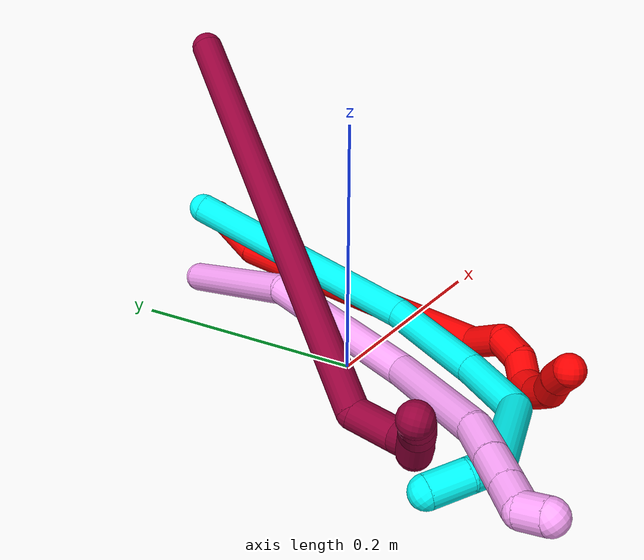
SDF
<sdf version="1.7">
 <world name="default">
  <model name="2">
   <static>0</static>
   <link name="2">
    <collision name="collision-cylinder-e_1_1_4">
     <pose>-0.009682 -0.026032 0.015119 1.04464 -0.31117 -0.180095</pose>
     <geometry><cylinder><radius>0.0125</radius><length>0.063245</length></cylinder></geometry>
     <surface>
      <friction><ode><mu>1.16</mu><mu2>1.16</mu2><slip1>0</slip1><slip2>0</slip2></ode></friction>
      <contact><ode><kp>1e+06</kp><kd>1</kd><max_vel>0</max_vel><min_depth>0.001</min_depth></ode></contact>
     </surface>
    </collision>
    <visual name="visual-cylinder-e_1_1_4">
     <pose>-0.009682 -0.026032 0.015119 1.04464 -0.31117 -0.180095</pose>
     <geometry><cylinder><radius>0.0125</radius><length>0.063245</length></cylinder></geometry>
     <material><ambient>1 0 0 1</ambient></material>
    </visual>
    <collision name="collision-cylinder-e_2_4_5">
     <pose>-0.072232 -0.176604 0.049767 1.41525 -0.397099 -0.340876</pose>
     <geometry><cylinder><radius>0.0125</radius><length>0.273398</length></cylinder></geometry>
     <surface>
      <friction><ode><mu>1.16</mu><mu2>1.16</mu2><slip1>0</slip1><slip2>0</slip2></ode></friction>
      <contact><ode><kp>1e+06</kp><kd>1</kd><max_vel>0</max_vel><min_depth>0.001</min_depth></ode></contact>
     </surface>
    </collision>
    <visual name="visual-cylinder-e_2_4_5">
     <pose>-0.072232 -0.176604 0.049767 1.41525 -0.397099 -0.340876</pose>
     <geometry><cylinder><radius>0.0125</radius><length>0.273398</length></cylinder></geometry>
     <material><ambient>1 0 0 1</ambient></material>
    </visual>
    <collision name="collision-cylinder-e_3_5_6">
     <pose>-0.128789 -0.317237 0.064798 1.84341 -0.217334 -0.285604</pose>
     <geometry><cylinder><radius>0.0125</radius><length>0.034224</length></cylinder></geometry>
     <surface>
      <friction><ode><mu>1.16</mu><mu2>1.16</mu2><slip1>0</slip1><slip2>0</slip2></ode></friction>
      <contact><ode><kp>1e+06</kp><kd>1</kd><max_vel>0</max_vel><min_depth>0.001</min_depth></ode></contact>
     </surface>
    </collision>
    <visual name="visual-cylinder-e_3_5_6">
     <pose>-0.128789 -0.317237 0.064798 1.84341 -0.217334 -0.285604</pose>
     <geometry><cylinder><radius>0.0125</radius><length>0.034224</length></cylinder></geometry>
     <material><ambient>1 0 0 1</ambient></material>
    </visual>
    <collision name="collision-cylinder-e_4_6_7">
     <pose>-0.13399 -0.345001 0.065344 1.1628 -0.118272 -0.077777</pose>
     <geometry><cylinder><radius>0.0125</radius><length>0.025611</length></cylinder></geometry>
     <surface>
      <friction><ode><mu>1.16</mu><mu2>1.16</mu2><slip1>0</slip1><slip2>0</slip2></ode></friction>
      <contact><ode><kp>1e+06</kp><kd>1</kd><max_vel>0</max_vel><min_depth>0.001</min_depth></ode></contact>
     </surface>
    </collision>
    <visual name="visual-cylinder-e_4_6_7">
     <pose>-0.13399 -0.345001 0.065344 1.1628 -0.118272 -0.077777</pose>
     <geometry><cylinder><radius>0.0125</radius><length>0.025611</length></cylinder></geometry>
     <material><ambient>1 0 0 1</ambient></material>
    </visual>
    <collision name="collision-cylinder-e_5_7_8">
     <pose>-0.13335 -0.364655 0.077585 0.837071 0.197494 0.088078</pose>
     <geometry><cylinder><radius>0.0125</radius><length>0.021919</length></cylinder></geometry>
     <surface>
      <friction><ode><mu>1.16</mu><mu2>1.16</mu2><slip1>0</slip1><slip2>0</slip2></ode></friction>
      <contact><ode><kp>1e+06</kp><kd>1</kd><max_vel>0</max_vel><min_depth>0.001</min_depth></ode></contact>
     </surface>
    </collision>
    <visual name="visual-cylinder-e_5_7_8">
     <pose>-0.13335 -0.364655 0.077585 0.837071 0.197494 0.088078</pose>
     <geometry><cylinder><radius>0.0125</radius><length>0.021919</length></cylinder></geometry>
     <material><ambient>1 0 0 1</ambient></material>
    </visual>
    <collision name="collision-cylinder-e_6_8_9">
     <pose>-0.129833 -0.383014 0.085622 1.49004 0.13052 0.120408</pose>
     <geometry><cylinder><radius>0.0125</radius><length>0.021003</length></cylinder></geometry>
     <surface>
      <friction><ode><mu>1.16</mu><mu2>1.16</mu2><slip1>0</slip1><slip2>0</slip2></ode></friction>
      <contact><ode><kp>1e+06</kp><kd>1</kd><max_vel>0</max_vel><min_depth>0.001</min_depth></ode></contact>
     </surface>
    </collision>
    <visual name="visual-cylinder-e_6_8_9">
     <pose>-0.129833 -0.383014 0.085622 1.49004 0.13052 0.120408</pose>
     <geometry><cylinder><radius>0.0125</radius><length>0.021003</length></cylinder></geometry>
     <material><ambient>1 0 0 1</ambient></material>
    </visual>
    <collision name="collision-cylinder-e_7_9_10">
     <pose>-0.12831 -0.402879 0.08323 1.89908 0.015609 0.021805</pose>
     <geometry><cylinder><radius>0.0125</radius><length>0.020046</length></cylinder></geometry>
     <surface>
      <friction><ode><mu>1.16</mu><mu2>1.16</mu2><slip1>0</slip1><slip2>0</slip2></ode></friction>
      <contact><ode><kp>1e+06</kp><kd>1</kd><max_vel>0</max_vel><min_depth>0.001</min_depth></ode></contact>
     </surface>
    </collision>
    <visual name="visual-cylinder-e_7_9_10">
     <pose>-0.12831 -0.402879 0.08323 1.89908 0.015609 0.021805</pose>
     <geometry><cylinder><radius>0.0125</radius><length>0.020046</length></cylinder></geometry>
     <material><ambient>1 0 0 1</ambient></material>
    </visual>
    <collision name="collision-cylinder-e_8_10_11">
     <pose>-0.126065 -0.41989 0.073404 2.29051 0.205826 0.448087</pose>
     <geometry><cylinder><radius>0.0125</radius><length>0.020442</length></cylinder></geometry>
     <surface>
      <friction><ode><mu>1.16</mu><mu2>1.16</mu2><slip1>0</slip1><slip2>0</slip2></ode></friction>
      <contact><ode><kp>1e+06</kp><kd>1</kd><max_vel>0</max_vel><min_depth>0.001</min_depth></ode></contact>
     </surface>
    </collision>
    <visual name="visual-cylinder-e_8_10_11">
     <pose>-0.126065 -0.41989 0.073404 2.29051 0.205826 0.448087</pose>
     <geometry><cylinder><radius>0.0125</radius><length>0.020442</length></cylinder></geometry>
     <material><ambient>1 0 0 1</ambient></material>
    </visual>
    <collision name="collision-cylinder-e_9_11_2">
     <pose>-0.123257 -0.435971 0.061576 2.11962 0.071497 0.127405</pose>
     <geometry><cylinder><radius>0.0125</radius><length>0.020112</length></cylinder></geometry>
     <surface>
      <friction><ode><mu>1.16</mu><mu2>1.16</mu2><slip1>0</slip1><slip2>0</slip2></ode></friction>
      <contact><ode><kp>1e+06</kp><kd>1</kd><max_vel>0</max_vel><min_depth>0.001</min_depth></ode></contact>
     </surface>
    </collision>
    <visual name="visual-cylinder-e_9_11_2">
     <pose>-0.123257 -0.435971 0.061576 2.11962 0.071497 0.127405</pose>
     <geometry><cylinder><radius>0.0125</radius><length>0.020112</length></cylinder></geometry>
     <material><ambient>1 0 0 1</ambient></material>
    </visual>
    <collision name="collision-sphere-2">
     <pose>-0.122539 -0.444528 0.056343 0 -0 0</pose>
     <geometry><sphere><radius>0.0125</radius></sphere></geometry>
     <surface>
      <friction><ode><mu>1.16</mu><mu2>1.16</mu2><slip1>0</slip1><slip2>0</slip2></ode></friction>
      <contact><ode><kp>1e+06</kp><kd>1</kd><max_vel>0</max_vel><min_depth>0.001</min_depth></ode></contact>
     </surface>
    </collision>
    <visual name="visual-sphere-2">
     <pose>-0.122539 -0.444528 0.056343 0 -0 0</pose>
     <geometry><sphere><radius>0.0125</radius></sphere></geometry>
     <material><ambient>1 0 0 1</ambient></material>
    </visual>
    <collision name="collision-sphere-11">
     <pose>-0.123976 -0.427414 0.066809 0 -0 0</pose>
     <geometry><sphere><radius>0.0125</radius></sphere></geometry>
     <surface>
      <friction><ode><mu>1.16</mu><mu2>1.16</mu2><slip1>0</slip1><slip2>0</slip2></ode></friction>
      <contact><ode><kp>1e+06</kp><kd>1</kd><max_vel>0</max_vel><min_depth>0.001</min_depth></ode></contact>
     </surface>
    </collision>
    <visual name="visual-sphere-11">
     <pose>-0.123976 -0.427414 0.066809 0 -0 0</pose>
     <geometry><sphere><radius>0.0125</radius></sphere></geometry>
     <material><ambient>1 0 0 1</ambient></material>
    </visual>
    <collision name="collision-sphere-10">
     <pose>-0.128154 -0.412366 0.079999 0 -0 0</pose>
     <geometry><sphere><radius>0.0125</radius></sphere></geometry>
     <surface>
      <friction><ode><mu>1.16</mu><mu2>1.16</mu2><slip1>0</slip1><slip2>0</slip2></ode></friction>
      <contact><ode><kp>1e+06</kp><kd>1</kd><max_vel>0</max_vel><min_depth>0.001</min_depth></ode></contact>
     </surface>
    </collision>
    <visual name="visual-sphere-10">
     <pose>-0.128154 -0.412366 0.079999 0 -0 0</pose>
     <geometry><sphere><radius>0.0125</radius></sphere></geometry>
     <material><ambient>1 0 0 1</ambient></material>
    </visual>
    <collision name="collision-sphere-9">
     <pose>-0.128466 -0.393393 0.086461 0 -0 0</pose>
     <geometry><sphere><radius>0.0125</radius></sphere></geometry>
     <surface>
      <friction><ode><mu>1.16</mu><mu2>1.16</mu2><slip1>0</slip1><slip2>0</slip2></ode></friction>
      <contact><ode><kp>1e+06</kp><kd>1</kd><max_vel>0</max_vel><min_depth>0.001</min_depth></ode></contact>
     </surface>
    </collision>
    <visual name="visual-sphere-9">
     <pose>-0.128466 -0.393393 0.086461 0 -0 0</pose>
     <geometry><sphere><radius>0.0125</radius></sphere></geometry>
     <material><ambient>1 0 0 1</ambient></material>
    </visual>
    <collision name="collision-sphere-4">
     <pose>-0.019364 -0.052064 0.030237 0 -0 0</pose>
     <geometry><sphere><radius>0.0125</radius></sphere></geometry>
     <surface>
      <friction><ode><mu>1.16</mu><mu2>1.16</mu2><slip1>0</slip1><slip2>0</slip2></ode></friction>
      <contact><ode><kp>1e+06</kp><kd>1</kd><max_vel>0</max_vel><min_depth>0.001</min_depth></ode></contact>
     </surface>
    </collision>
    <visual name="visual-sphere-4">
     <pose>-0.019364 -0.052064 0.030237 0 -0 0</pose>
     <geometry><sphere><radius>0.0125</radius></sphere></geometry>
     <material><ambient>1 0 0 1</ambient></material>
    </visual>
    <collision name="collision-sphere-1">
     <geometry><sphere><radius>0.0125</radius></sphere></geometry>
     <surface>
      <friction><ode><mu>1.16</mu><mu2>1.16</mu2><slip1>0</slip1><slip2>0</slip2></ode></friction>
      <contact><ode><kp>1e+06</kp><kd>1</kd><max_vel>0</max_vel><min_depth>0.001</min_depth></ode></contact>
     </surface>
    </collision>
    <visual name="visual-sphere-1">
     <geometry><sphere><radius>0.0125</radius></sphere></geometry>
     <material><ambient>1 0 0 1</ambient></material>
    </visual>
    <collision name="collision-sphere-8">
     <pose>-0.1312 -0.372636 0.084782 0 -0 0</pose>
     <geometry><sphere><radius>0.0125</radius></sphere></geometry>
     <surface>
      <friction><ode><mu>1.16</mu><mu2>1.16</mu2><slip1>0</slip1><slip2>0</slip2></ode></friction>
      <contact><ode><kp>1e+06</kp><kd>1</kd><max_vel>0</max_vel><min_depth>0.001</min_depth></ode></contact>
     </surface>
    </collision>
    <visual name="visual-sphere-8">
     <pose>-0.1312 -0.372636 0.084782 0 -0 0</pose>
     <geometry><sphere><radius>0.0125</radius></sphere></geometry>
     <material><ambient>1 0 0 1</ambient></material>
    </visual>
    <collision name="collision-sphere-5">
     <pose>-0.125099 -0.301144 0.069297 0 -0 0</pose>
     <geometry><sphere><radius>0.0125</radius></sphere></geometry>
     <surface>
      <friction><ode><mu>1.16</mu><mu2>1.16</mu2><slip1>0</slip1><slip2>0</slip2></ode></friction>
      <contact><ode><kp>1e+06</kp><kd>1</kd><max_vel>0</max_vel><min_depth>0.001</min_depth></ode></contact>
     </surface>
    </collision>
    <visual name="visual-sphere-5">
     <pose>-0.125099 -0.301144 0.069297 0 -0 0</pose>
     <geometry><sphere><radius>0.0125</radius></sphere></geometry>
     <material><ambient>1 0 0 1</ambient></material>
    </visual>
    <collision name="collision-sphere-6">
     <pose>-0.132479 -0.333329 0.060299 0 -0 0</pose>
     <geometry><sphere><radius>0.0125</radius></sphere></geometry>
     <surface>
      <friction><ode><mu>1.16</mu><mu2>1.16</mu2><slip1>0</slip1><slip2>0</slip2></ode></friction>
      <contact><ode><kp>1e+06</kp><kd>1</kd><max_vel>0</max_vel><min_depth>0.001</min_depth></ode></contact>
     </surface>
    </collision>
    <visual name="visual-sphere-6">
     <pose>-0.132479 -0.333329 0.060299 0 -0 0</pose>
     <geometry><sphere><radius>0.0125</radius></sphere></geometry>
     <material><ambient>1 0 0 1</ambient></material>
    </visual>
    <collision name="collision-sphere-7">
     <pose>-0.135501 -0.356674 0.070389 0 -0 0</pose>
     <geometry><sphere><radius>0.0125</radius></sphere></geometry>
     <surface>
      <friction><ode><mu>1.16</mu><mu2>1.16</mu2><slip1>0</slip1><slip2>0</slip2></ode></friction>
      <contact><ode><kp>1e+06</kp><kd>1</kd><max_vel>0</max_vel><min_depth>0.001</min_depth></ode></contact>
     </surface>
    </collision>
    <visual name="visual-sphere-7">
     <pose>-0.135501 -0.356674 0.070389 0 -0 0</pose>
     <geometry><sphere><radius>0.0125</radius></sphere></geometry>
     <material><ambient>1 0 0 1</ambient></material>
    </visual>
    <inertial>
     <pose>-0.082955 -0.222175 0.05272 0 -0 0</pose>
     <mass>0.5</mass>
     <inertia>
      <ixx>0.000984</ixx>
      <ixy>0</ixy>
      <ixz>0</ixz>
      <iyy>-8.6e-05</iyy>
      <iyz>0</iyz>
      <izz>0.002268</izz>
     </inertia>
    </inertial>
   </link>
   <pose>0.15844 0.243616 0.032452 -2.93839 -0.100468 2.48874</pose>
  </model>
  <model name="3">
   <static>0</static>
   <link name="3">
    <collision name="collision-cylinder-e_1_1_4">
     <pose>0.009102 -0.04433 -0.08814 2.67558 0.091994 0.38316</pose>
     <geometry><cylinder><radius>0.0125</radius><length>0.198158</length></cylinder></geometry>
     <surface>
      <friction><ode><mu>1.16</mu><mu2>1.16</mu2><slip1>0</slip1><slip2>0</slip2></ode></friction>
      <contact><ode><kp>1e+06</kp><kd>1</kd><max_vel>0</max_vel><min_depth>0.001</min_depth></ode></contact>
     </surface>
    </collision>
    <visual name="visual-cylinder-e_1_1_4">
     <pose>0.009102 -0.04433 -0.08814 2.67558 0.091994 0.38316</pose>
     <geometry><cylinder><radius>0.0125</radius><length>0.198158</length></cylinder></geometry>
     <material><ambient>0.003922 1 0.996078 1</ambient></material>
    </visual>
    <collision name="collision-cylinder-e_2_4_5">
     <pose>-0.002592 -0.115151 -0.211255 2.49338 -0.442611 -1.18021</pose>
     <geometry><cylinder><radius>0.0125</radius><length>0.097106</length></cylinder></geometry>
     <surface>
      <friction><ode><mu>1.16</mu><mu2>1.16</mu2><slip1>0</slip1><slip2>0</slip2></ode></friction>
      <contact><ode><kp>1e+06</kp><kd>1</kd><max_vel>0</max_vel><min_depth>0.001</min_depth></ode></contact>
     </surface>
    </collision>
    <visual name="visual-cylinder-e_2_4_5">
     <pose>-0.002592 -0.115151 -0.211255 2.49338 -0.442611 -1.18021</pose>
     <geometry><cylinder><radius>0.0125</radius><length>0.097106</length></cylinder></geometry>
     <material><ambient>0.003922 1 0.996078 1</ambient></material>
    </visual>
    <collision name="collision-cylinder-e_3_5_6">
     <pose>-0.040072 -0.157827 -0.266257 2.46186 -0.574932 -1.39281</pose>
     <geometry><cylinder><radius>0.0125</radius><length>0.061368</length></cylinder></geometry>
     <surface>
      <friction><ode><mu>1.16</mu><mu2>1.16</mu2><slip1>0</slip1><slip2>0</slip2></ode></friction>
      <contact><ode><kp>1e+06</kp><kd>1</kd><max_vel>0</max_vel><min_depth>0.001</min_depth></ode></contact>
     </surface>
    </collision>
    <visual name="visual-cylinder-e_3_5_6">
     <pose>-0.040072 -0.157827 -0.266257 2.46186 -0.574932 -1.39281</pose>
     <geometry><cylinder><radius>0.0125</radius><length>0.061368</length></cylinder></geometry>
     <material><ambient>0.003922 1 0.996078 1</ambient></material>
    </visual>
    <collision name="collision-cylinder-e_4_6_7">
     <pose>-0.09921 -0.183314 -0.294702 2.30637 -1.2835 -2.06993</pose>
     <geometry><cylinder><radius>0.0125</radius><length>0.088534</length></cylinder></geometry>
     <surface>
      <friction><ode><mu>1.16</mu><mu2>1.16</mu2><slip1>0</slip1><slip2>0</slip2></ode></friction>
      <contact><ode><kp>1e+06</kp><kd>1</kd><max_vel>0</max_vel><min_depth>0.001</min_depth></ode></contact>
     </surface>
    </collision>
    <visual name="visual-cylinder-e_4_6_7">
     <pose>-0.09921 -0.183314 -0.294702 2.30637 -1.2835 -2.06993</pose>
     <geometry><cylinder><radius>0.0125</radius><length>0.088534</length></cylinder></geometry>
     <material><ambient>0.003922 1 0.996078 1</ambient></material>
    </visual>
    <collision name="collision-cylinder-e_5_7_8">
     <pose>-0.152282 -0.188072 -0.299751 -0.932835 -1.08143 0.587099</pose>
     <geometry><cylinder><radius>0.0125</radius><length>0.024061</length></cylinder></geometry>
     <surface>
      <friction><ode><mu>1.16</mu><mu2>1.16</mu2><slip1>0</slip1><slip2>0</slip2></ode></friction>
      <contact><ode><kp>1e+06</kp><kd>1</kd><max_vel>0</max_vel><min_depth>0.001</min_depth></ode></contact>
     </surface>
    </collision>
    <visual name="visual-cylinder-e_5_7_8">
     <pose>-0.152282 -0.188072 -0.299751 -0.932835 -1.08143 0.587099</pose>
     <geometry><cylinder><radius>0.0125</radius><length>0.024061</length></cylinder></geometry>
     <material><ambient>0.003922 1 0.996078 1</ambient></material>
    </visual>
    <collision name="collision-cylinder-e_6_8_2">
     <pose>-0.174719 -0.174611 -0.292197 -1.13193 -0.875906 0.578314</pose>
     <geometry><cylinder><radius>0.0125</radius><length>0.030772</length></cylinder></geometry>
     <surface>
      <friction><ode><mu>1.16</mu><mu2>1.16</mu2><slip1>0</slip1><slip2>0</slip2></ode></friction>
      <contact><ode><kp>1e+06</kp><kd>1</kd><max_vel>0</max_vel><min_depth>0.001</min_depth></ode></contact>
     </surface>
    </collision>
    <visual name="visual-cylinder-e_6_8_2">
     <pose>-0.174719 -0.174611 -0.292197 -1.13193 -0.875906 0.578314</pose>
     <geometry><cylinder><radius>0.0125</radius><length>0.030772</length></cylinder></geometry>
     <material><ambient>0.003922 1 0.996078 1</ambient></material>
    </visual>
    <collision name="collision-sphere-2">
     <pose>-0.186537 -0.165693 -0.28801 0 -0 0</pose>
     <geometry><sphere><radius>0.0125</radius></sphere></geometry>
     <surface>
      <friction><ode><mu>1.16</mu><mu2>1.16</mu2><slip1>0</slip1><slip2>0</slip2></ode></friction>
      <contact><ode><kp>1e+06</kp><kd>1</kd><max_vel>0</max_vel><min_depth>0.001</min_depth></ode></contact>
     </surface>
    </collision>
    <visual name="visual-sphere-2">
     <pose>-0.186537 -0.165693 -0.28801 0 -0 0</pose>
     <geometry><sphere><radius>0.0125</radius></sphere></geometry>
     <material><ambient>0.003922 1 0.996078 1</ambient></material>
    </visual>
    <collision name="collision-sphere-4">
     <pose>0.018204 -0.088661 -0.17628 0 -0 0</pose>
     <geometry><sphere><radius>0.0125</radius></sphere></geometry>
     <surface>
      <friction><ode><mu>1.16</mu><mu2>1.16</mu2><slip1>0</slip1><slip2>0</slip2></ode></friction>
      <contact><ode><kp>1e+06</kp><kd>1</kd><max_vel>0</max_vel><min_depth>0.001</min_depth></ode></contact>
     </surface>
    </collision>
    <visual name="visual-sphere-4">
     <pose>0.018204 -0.088661 -0.17628 0 -0 0</pose>
     <geometry><sphere><radius>0.0125</radius></sphere></geometry>
     <material><ambient>0.003922 1 0.996078 1</ambient></material>
    </visual>
    <collision name="collision-sphere-1">
     <geometry><sphere><radius>0.0125</radius></sphere></geometry>
     <surface>
      <friction><ode><mu>1.16</mu><mu2>1.16</mu2><slip1>0</slip1><slip2>0</slip2></ode></friction>
      <contact><ode><kp>1e+06</kp><kd>1</kd><max_vel>0</max_vel><min_depth>0.001</min_depth></ode></contact>
     </surface>
    </collision>
    <visual name="visual-sphere-1">
     <geometry><sphere><radius>0.0125</radius></sphere></geometry>
     <material><ambient>0.003922 1 0.996078 1</ambient></material>
    </visual>
    <collision name="collision-sphere-8">
     <pose>-0.162901 -0.183529 -0.296383 0 -0 0</pose>
     <geometry><sphere><radius>0.0125</radius></sphere></geometry>
     <surface>
      <friction><ode><mu>1.16</mu><mu2>1.16</mu2><slip1>0</slip1><slip2>0</slip2></ode></friction>
      <contact><ode><kp>1e+06</kp><kd>1</kd><max_vel>0</max_vel><min_depth>0.001</min_depth></ode></contact>
     </surface>
    </collision>
    <visual name="visual-sphere-8">
     <pose>-0.162901 -0.183529 -0.296383 0 -0 0</pose>
     <geometry><sphere><radius>0.0125</radius></sphere></geometry>
     <material><ambient>0.003922 1 0.996078 1</ambient></material>
    </visual>
    <collision name="collision-sphere-5">
     <pose>-0.023387 -0.141641 -0.24623 0 -0 0</pose>
     <geometry><sphere><radius>0.0125</radius></sphere></geometry>
     <surface>
      <friction><ode><mu>1.16</mu><mu2>1.16</mu2><slip1>0</slip1><slip2>0</slip2></ode></friction>
      <contact><ode><kp>1e+06</kp><kd>1</kd><max_vel>0</max_vel><min_depth>0.001</min_depth></ode></contact>
     </surface>
    </collision>
    <visual name="visual-sphere-5">
     <pose>-0.023387 -0.141641 -0.24623 0 -0 0</pose>
     <geometry><sphere><radius>0.0125</radius></sphere></geometry>
     <material><ambient>0.003922 1 0.996078 1</ambient></material>
    </visual>
    <collision name="collision-sphere-6">
     <pose>-0.056757 -0.174014 -0.286285 0 -0 0</pose>
     <geometry><sphere><radius>0.0125</radius></sphere></geometry>
     <surface>
      <friction><ode><mu>1.16</mu><mu2>1.16</mu2><slip1>0</slip1><slip2>0</slip2></ode></friction>
      <contact><ode><kp>1e+06</kp><kd>1</kd><max_vel>0</max_vel><min_depth>0.001</min_depth></ode></contact>
     </surface>
    </collision>
    <visual name="visual-sphere-6">
     <pose>-0.056757 -0.174014 -0.286285 0 -0 0</pose>
     <geometry><sphere><radius>0.0125</radius></sphere></geometry>
     <material><ambient>0.003922 1 0.996078 1</ambient></material>
    </visual>
    <collision name="collision-sphere-7">
     <pose>-0.141663 -0.192615 -0.303119 0 -0 0</pose>
     <geometry><sphere><radius>0.0125</radius></sphere></geometry>
     <surface>
      <friction><ode><mu>1.16</mu><mu2>1.16</mu2><slip1>0</slip1><slip2>0</slip2></ode></friction>
      <contact><ode><kp>1e+06</kp><kd>1</kd><max_vel>0</max_vel><min_depth>0.001</min_depth></ode></contact>
     </surface>
    </collision>
    <visual name="visual-sphere-7">
     <pose>-0.141663 -0.192615 -0.303119 0 -0 0</pose>
     <geometry><sphere><radius>0.0125</radius></sphere></geometry>
     <material><ambient>0.003922 1 0.996078 1</ambient></material>
    </visual>
    <inertial>
     <pose>-0.037462 -0.11156 -0.193229 0 -0 0</pose>
     <mass>0.5</mass>
     <inertia>
      <ixx>0.000763</ixx>
      <ixy>0</ixy>
      <ixz>0</ixz>
      <iyy>-0.000339</iyy>
      <iyz>0</iyz>
      <izz>0.000385</izz>
     </inertia>
    </inertial>
   </link>
   <pose>0.050303 0.177245 0.084381 -0.798729 0.049457 -0.005935</pose>
  </model>
  <model name="4">
   <static>0</static>
   <link name="4">
    <collision name="collision-cylinder-e_1_1_4">
     <pose>-0.05371 -0.038375 0.019218 1.10652 -0.89662 -0.577491</pose>
     <geometry><cylinder><radius>0.0125</radius><length>0.137503</length></cylinder></geometry>
     <surface>
      <friction><ode><mu>1.16</mu><mu2>1.16</mu2><slip1>0</slip1><slip2>0</slip2></ode></friction>
      <contact><ode><kp>1e+06</kp><kd>1</kd><max_vel>0</max_vel><min_depth>0.001</min_depth></ode></contact>
     </surface>
    </collision>
    <visual name="visual-cylinder-e_1_1_4">
     <pose>-0.05371 -0.038375 0.019218 1.10652 -0.89662 -0.577491</pose>
     <geometry><cylinder><radius>0.0125</radius><length>0.137503</length></cylinder></geometry>
     <material><ambient>1 0.65098 0.996078 1</ambient></material>
    </visual>
    <collision name="collision-cylinder-e_2_4_5">
     <pose>-0.150569 -0.116508 0.081773 0.742346 -0.63298 -0.253566</pose>
     <geometry><cylinder><radius>0.0125</radius><length>0.145884</length></cylinder></geometry>
     <surface>
      <friction><ode><mu>1.16</mu><mu2>1.16</mu2><slip1>0</slip1><slip2>0</slip2></ode></friction>
      <contact><ode><kp>1e+06</kp><kd>1</kd><max_vel>0</max_vel><min_depth>0.001</min_depth></ode></contact>
     </surface>
    </collision>
    <visual name="visual-cylinder-e_2_4_5">
     <pose>-0.150569 -0.116508 0.081773 0.742346 -0.63298 -0.253566</pose>
     <geometry><cylinder><radius>0.0125</radius><length>0.145884</length></cylinder></geometry>
     <material><ambient>1 0.65098 0.996078 1</ambient></material>
    </visual>
    <collision name="collision-cylinder-e_3_5_6">
     <pose>-0.225166 -0.19824 0.141572 1.19703 -0.609044 -0.422286</pose>
     <geometry><cylinder><radius>0.0125</radius><length>0.109943</length></cylinder></geometry>
     <surface>
      <friction><ode><mu>1.16</mu><mu2>1.16</mu2><slip1>0</slip1><slip2>0</slip2></ode></friction>
      <contact><ode><kp>1e+06</kp><kd>1</kd><max_vel>0</max_vel><min_depth>0.001</min_depth></ode></contact>
     </surface>
    </collision>
    <visual name="visual-cylinder-e_3_5_6">
     <pose>-0.225166 -0.19824 0.141572 1.19703 -0.609044 -0.422286</pose>
     <geometry><cylinder><radius>0.0125</radius><length>0.109943</length></cylinder></geometry>
     <material><ambient>1 0.65098 0.996078 1</ambient></material>
    </visual>
    <collision name="collision-cylinder-e_4_6_7">
     <pose>-0.26291 -0.255059 0.163732 1.20437 -0.376982 -0.260745</pose>
     <geometry><cylinder><radius>0.0125</radius><length>0.034203</length></cylinder></geometry>
     <surface>
      <friction><ode><mu>1.16</mu><mu2>1.16</mu2><slip1>0</slip1><slip2>0</slip2></ode></friction>
      <contact><ode><kp>1e+06</kp><kd>1</kd><max_vel>0</max_vel><min_depth>0.001</min_depth></ode></contact>
     </surface>
    </collision>
    <visual name="visual-cylinder-e_4_6_7">
     <pose>-0.26291 -0.255059 0.163732 1.20437 -0.376982 -0.260745</pose>
     <geometry><cylinder><radius>0.0125</radius><length>0.034203</length></cylinder></geometry>
     <material><ambient>1 0.65098 0.996078 1</ambient></material>
    </visual>
    <collision name="collision-cylinder-e_5_7_8">
     <pose>-0.274291 -0.282371 0.17468 1.17214 -0.359631 -0.240198</pose>
     <geometry><cylinder><radius>0.0125</radius><length>0.028905</length></cylinder></geometry>
     <surface>
      <friction><ode><mu>1.16</mu><mu2>1.16</mu2><slip1>0</slip1><slip2>0</slip2></ode></friction>
      <contact><ode><kp>1e+06</kp><kd>1</kd><max_vel>0</max_vel><min_depth>0.001</min_depth></ode></contact>
     </surface>
    </collision>
    <visual name="visual-cylinder-e_5_7_8">
     <pose>-0.274291 -0.282371 0.17468 1.17214 -0.359631 -0.240198</pose>
     <geometry><cylinder><radius>0.0125</radius><length>0.028905</length></cylinder></geometry>
     <material><ambient>1 0.65098 0.996078 1</ambient></material>
    </visual>
    <collision name="collision-cylinder-e_6_8_9">
     <pose>-0.283399 -0.304888 0.184097 1.17782 -0.354035 -0.237863</pose>
     <geometry><cylinder><radius>0.0125</radius><length>0.023196</length></cylinder></geometry>
     <surface>
      <friction><ode><mu>1.16</mu><mu2>1.16</mu2><slip1>0</slip1><slip2>0</slip2></ode></friction>
      <contact><ode><kp>1e+06</kp><kd>1</kd><max_vel>0</max_vel><min_depth>0.001</min_depth></ode></contact>
     </surface>
    </collision>
    <visual name="visual-cylinder-e_6_8_9">
     <pose>-0.283399 -0.304888 0.184097 1.17782 -0.354035 -0.237863</pose>
     <geometry><cylinder><radius>0.0125</radius><length>0.023196</length></cylinder></geometry>
     <material><ambient>1 0.65098 0.996078 1</ambient></material>
    </visual>
    <collision name="collision-cylinder-e_7_9_2">
     <pose>-0.295946 -0.318721 0.192346 0.747352 -0.992357 -0.418317</pose>
     <geometry><cylinder><radius>0.0125</radius><length>0.020366</length></cylinder></geometry>
     <surface>
      <friction><ode><mu>1.16</mu><mu2>1.16</mu2><slip1>0</slip1><slip2>0</slip2></ode></friction>
      <contact><ode><kp>1e+06</kp><kd>1</kd><max_vel>0</max_vel><min_depth>0.001</min_depth></ode></contact>
     </surface>
    </collision>
    <visual name="visual-cylinder-e_7_9_2">
     <pose>-0.295946 -0.318721 0.192346 0.747352 -0.992357 -0.418317</pose>
     <geometry><cylinder><radius>0.0125</radius><length>0.020366</length></cylinder></geometry>
     <material><ambient>1 0.65098 0.996078 1</ambient></material>
    </visual>
    <collision name="collision-sphere-2">
     <pose>-0.304472 -0.322505 0.19643 0 -0 0</pose>
     <geometry><sphere><radius>0.0125</radius></sphere></geometry>
     <surface>
      <friction><ode><mu>1.16</mu><mu2>1.16</mu2><slip1>0</slip1><slip2>0</slip2></ode></friction>
      <contact><ode><kp>1e+06</kp><kd>1</kd><max_vel>0</max_vel><min_depth>0.001</min_depth></ode></contact>
     </surface>
    </collision>
    <visual name="visual-sphere-2">
     <pose>-0.304472 -0.322505 0.19643 0 -0 0</pose>
     <geometry><sphere><radius>0.0125</radius></sphere></geometry>
     <material><ambient>1 0.65098 0.996078 1</ambient></material>
    </visual>
    <collision name="collision-sphere-9">
     <pose>-0.287419 -0.314937 0.188263 0 -0 0</pose>
     <geometry><sphere><radius>0.0125</radius></sphere></geometry>
     <surface>
      <friction><ode><mu>1.16</mu><mu2>1.16</mu2><slip1>0</slip1><slip2>0</slip2></ode></friction>
      <contact><ode><kp>1e+06</kp><kd>1</kd><max_vel>0</max_vel><min_depth>0.001</min_depth></ode></contact>
     </surface>
    </collision>
    <visual name="visual-sphere-9">
     <pose>-0.287419 -0.314937 0.188263 0 -0 0</pose>
     <geometry><sphere><radius>0.0125</radius></sphere></geometry>
     <material><ambient>1 0.65098 0.996078 1</ambient></material>
    </visual>
    <collision name="collision-sphere-4">
     <pose>-0.10742 -0.07675 0.038436 0 -0 0</pose>
     <geometry><sphere><radius>0.0125</radius></sphere></geometry>
     <surface>
      <friction><ode><mu>1.16</mu><mu2>1.16</mu2><slip1>0</slip1><slip2>0</slip2></ode></friction>
      <contact><ode><kp>1e+06</kp><kd>1</kd><max_vel>0</max_vel><min_depth>0.001</min_depth></ode></contact>
     </surface>
    </collision>
    <visual name="visual-sphere-4">
     <pose>-0.10742 -0.07675 0.038436 0 -0 0</pose>
     <geometry><sphere><radius>0.0125</radius></sphere></geometry>
     <material><ambient>1 0.65098 0.996078 1</ambient></material>
    </visual>
    <collision name="collision-sphere-1">
     <geometry><sphere><radius>0.0125</radius></sphere></geometry>
     <surface>
      <friction><ode><mu>1.16</mu><mu2>1.16</mu2><slip1>0</slip1><slip2>0</slip2></ode></friction>
      <contact><ode><kp>1e+06</kp><kd>1</kd><max_vel>0</max_vel><min_depth>0.001</min_depth></ode></contact>
     </surface>
    </collision>
    <visual name="visual-sphere-1">
     <geometry><sphere><radius>0.0125</radius></sphere></geometry>
     <material><ambient>1 0.65098 0.996078 1</ambient></material>
    </visual>
    <collision name="collision-sphere-8">
     <pose>-0.279378 -0.294838 0.179931 0 -0 0</pose>
     <geometry><sphere><radius>0.0125</radius></sphere></geometry>
     <surface>
      <friction><ode><mu>1.16</mu><mu2>1.16</mu2><slip1>0</slip1><slip2>0</slip2></ode></friction>
      <contact><ode><kp>1e+06</kp><kd>1</kd><max_vel>0</max_vel><min_depth>0.001</min_depth></ode></contact>
     </surface>
    </collision>
    <visual name="visual-sphere-8">
     <pose>-0.279378 -0.294838 0.179931 0 -0 0</pose>
     <geometry><sphere><radius>0.0125</radius></sphere></geometry>
     <material><ambient>1 0.65098 0.996078 1</ambient></material>
    </visual>
    <collision name="collision-sphere-5">
     <pose>-0.193718 -0.156265 0.12511 0 -0 0</pose>
     <geometry><sphere><radius>0.0125</radius></sphere></geometry>
     <surface>
      <friction><ode><mu>1.16</mu><mu2>1.16</mu2><slip1>0</slip1><slip2>0</slip2></ode></friction>
      <contact><ode><kp>1e+06</kp><kd>1</kd><max_vel>0</max_vel><min_depth>0.001</min_depth></ode></contact>
     </surface>
    </collision>
    <visual name="visual-sphere-5">
     <pose>-0.193718 -0.156265 0.12511 0 -0 0</pose>
     <geometry><sphere><radius>0.0125</radius></sphere></geometry>
     <material><ambient>1 0.65098 0.996078 1</ambient></material>
    </visual>
    <collision name="collision-sphere-6">
     <pose>-0.256615 -0.240214 0.158035 0 -0 0</pose>
     <geometry><sphere><radius>0.0125</radius></sphere></geometry>
     <surface>
      <friction><ode><mu>1.16</mu><mu2>1.16</mu2><slip1>0</slip1><slip2>0</slip2></ode></friction>
      <contact><ode><kp>1e+06</kp><kd>1</kd><max_vel>0</max_vel><min_depth>0.001</min_depth></ode></contact>
     </surface>
    </collision>
    <visual name="visual-sphere-6">
     <pose>-0.256615 -0.240214 0.158035 0 -0 0</pose>
     <geometry><sphere><radius>0.0125</radius></sphere></geometry>
     <material><ambient>1 0.65098 0.996078 1</ambient></material>
    </visual>
    <collision name="collision-sphere-7">
     <pose>-0.269205 -0.269904 0.169429 0 -0 0</pose>
     <geometry><sphere><radius>0.0125</radius></sphere></geometry>
     <surface>
      <friction><ode><mu>1.16</mu><mu2>1.16</mu2><slip1>0</slip1><slip2>0</slip2></ode></friction>
      <contact><ode><kp>1e+06</kp><kd>1</kd><max_vel>0</max_vel><min_depth>0.001</min_depth></ode></contact>
     </surface>
    </collision>
    <visual name="visual-sphere-7">
     <pose>-0.269205 -0.269904 0.169429 0 -0 0</pose>
     <geometry><sphere><radius>0.0125</radius></sphere></geometry>
     <material><ambient>1 0.65098 0.996078 1</ambient></material>
    </visual>
    <inertial>
     <pose>-0.167256 -0.149035 0.097947 0 -0 0</pose>
     <mass>0.5</mass>
     <inertia>
      <ixx>0.000224</ixx>
      <ixy>0</ixy>
      <ixz>0</ixz>
      <iyy>0.000257</iyy>
      <iyz>0</iyz>
      <izz>0.000781</izz>
     </inertia>
    </inertial>
   </link>
   <pose>0.060211 0.191891 0.012093 3.10027 0.677801 1.79186</pose>
  </model>
  <model name="8">
   <static>0</static>
   <link name="8">
    <collision name="collision-cylinder-e_1_1_4">
     <pose>-0.101889 -0.093619 -0.108737 2.43076 -0.617472 -1.41968</pose>
     <geometry><cylinder><radius>0.0125</radius><length>0.351964</length></cylinder></geometry>
     <surface>
      <friction><ode><mu>1.16</mu><mu2>1.16</mu2><slip1>0</slip1><slip2>0</slip2></ode></friction>
      <contact><ode><kp>1e+06</kp><kd>1</kd><max_vel>0</max_vel><min_depth>0.001</min_depth></ode></contact>
     </surface>
    </collision>
    <visual name="visual-cylinder-e_1_1_4">
     <pose>-0.101889 -0.093619 -0.108737 2.43076 -0.617472 -1.41968</pose>
     <geometry><cylinder><radius>0.0125</radius><length>0.351964</length></cylinder></geometry>
     <material><ambient>0.584314 0 0.227451 1</ambient></material>
    </visual>
    <collision name="collision-cylinder-e_2_4_5">
     <pose>-0.205614 -0.191561 -0.234875 2.89813 -0.101969 -0.790361</pose>
     <geometry><cylinder><radius>0.0125</radius><length>0.036049</length></cylinder></geometry>
     <surface>
      <friction><ode><mu>1.16</mu><mu2>1.16</mu2><slip1>0</slip1><slip2>0</slip2></ode></friction>
      <contact><ode><kp>1e+06</kp><kd>1</kd><max_vel>0</max_vel><min_depth>0.001</min_depth></ode></contact>
     </surface>
    </collision>
    <visual name="visual-cylinder-e_2_4_5">
     <pose>-0.205614 -0.191561 -0.234875 2.89813 -0.101969 -0.790361</pose>
     <geometry><cylinder><radius>0.0125</radius><length>0.036049</length></cylinder></geometry>
     <material><ambient>0.584314 0 0.227451 1</ambient></material>
    </visual>
    <collision name="collision-cylinder-e_3_5_6">
     <pose>-0.205304 -0.204654 -0.259714 2.27408 0.184381 0.394035</pose>
     <geometry><cylinder><radius>0.0125</radius><length>0.023394</length></cylinder></geometry>
     <surface>
      <friction><ode><mu>1.16</mu><mu2>1.16</mu2><slip1>0</slip1><slip2>0</slip2></ode></friction>
      <contact><ode><kp>1e+06</kp><kd>1</kd><max_vel>0</max_vel><min_depth>0.001</min_depth></ode></contact>
     </surface>
    </collision>
    <visual name="visual-cylinder-e_3_5_6">
     <pose>-0.205304 -0.204654 -0.259714 2.27408 0.184381 0.394035</pose>
     <geometry><cylinder><radius>0.0125</radius><length>0.023394</length></cylinder></geometry>
     <material><ambient>0.584314 0 0.227451 1</ambient></material>
    </visual>
    <collision name="collision-cylinder-e_4_6_7">
     <pose>-0.20148 -0.225174 -0.267577 1.60712 0.141906 0.147138</pose>
     <geometry><cylinder><radius>0.0125</radius><length>0.023754</length></cylinder></geometry>
     <surface>
      <friction><ode><mu>1.16</mu><mu2>1.16</mu2><slip1>0</slip1><slip2>0</slip2></ode></friction>
      <contact><ode><kp>1e+06</kp><kd>1</kd><max_vel>0</max_vel><min_depth>0.001</min_depth></ode></contact>
     </surface>
    </collision>
    <visual name="visual-cylinder-e_4_6_7">
     <pose>-0.20148 -0.225174 -0.267577 1.60712 0.141906 0.147138</pose>
     <geometry><cylinder><radius>0.0125</radius><length>0.023754</length></cylinder></geometry>
     <material><ambient>0.584314 0 0.227451 1</ambient></material>
    </visual>
    <collision name="collision-cylinder-e_5_7_8">
     <pose>-0.190652 -0.244981 -0.267834 1.54967 0.848594 0.832852</pose>
     <geometry><cylinder><radius>0.0125</radius><length>0.024382</length></cylinder></geometry>
     <surface>
      <friction><ode><mu>1.16</mu><mu2>1.16</mu2><slip1>0</slip1><slip2>0</slip2></ode></friction>
      <contact><ode><kp>1e+06</kp><kd>1</kd><max_vel>0</max_vel><min_depth>0.001</min_depth></ode></contact>
     </surface>
    </collision>
    <visual name="visual-cylinder-e_5_7_8">
     <pose>-0.190652 -0.244981 -0.267834 1.54967 0.848594 0.832852</pose>
     <geometry><cylinder><radius>0.0125</radius><length>0.024382</length></cylinder></geometry>
     <material><ambient>0.584314 0 0.227451 1</ambient></material>
    </visual>
    <collision name="collision-cylinder-e_6_8_9">
     <pose>-0.175891 -0.261438 -0.267381 1.53717 0.588854 0.570433</pose>
     <geometry><cylinder><radius>0.0125</radius><length>0.020215</length></cylinder></geometry>
     <surface>
      <friction><ode><mu>1.16</mu><mu2>1.16</mu2><slip1>0</slip1><slip2>0</slip2></ode></friction>
      <contact><ode><kp>1e+06</kp><kd>1</kd><max_vel>0</max_vel><min_depth>0.001</min_depth></ode></contact>
     </surface>
    </collision>
    <visual name="visual-cylinder-e_6_8_9">
     <pose>-0.175891 -0.261438 -0.267381 1.53717 0.588854 0.570433</pose>
     <geometry><cylinder><radius>0.0125</radius><length>0.020215</length></cylinder></geometry>
     <material><ambient>0.584314 0 0.227451 1</ambient></material>
    </visual>
    <collision name="collision-cylinder-e_7_9_2">
     <pose>-0.165693 -0.278856 -0.266759 1.53309 0.470014 0.453216</pose>
     <geometry><cylinder><radius>0.0125</radius><length>0.020242</length></cylinder></geometry>
     <surface>
      <friction><ode><mu>1.16</mu><mu2>1.16</mu2><slip1>0</slip1><slip2>0</slip2></ode></friction>
      <contact><ode><kp>1e+06</kp><kd>1</kd><max_vel>0</max_vel><min_depth>0.001</min_depth></ode></contact>
     </surface>
    </collision>
    <visual name="visual-cylinder-e_7_9_2">
     <pose>-0.165693 -0.278856 -0.266759 1.53309 0.470014 0.453216</pose>
     <geometry><cylinder><radius>0.0125</radius><length>0.020242</length></cylinder></geometry>
     <material><ambient>0.584314 0 0.227451 1</ambient></material>
    </visual>
    <collision name="collision-sphere-2">
     <pose>-0.16111 -0.287873 -0.266418 0 -0 0</pose>
     <geometry><sphere><radius>0.0125</radius></sphere></geometry>
     <surface>
      <friction><ode><mu>1.16</mu><mu2>1.16</mu2><slip1>0</slip1><slip2>0</slip2></ode></friction>
      <contact><ode><kp>1e+06</kp><kd>1</kd><max_vel>0</max_vel><min_depth>0.001</min_depth></ode></contact>
     </surface>
    </collision>
    <visual name="visual-sphere-2">
     <pose>-0.16111 -0.287873 -0.266418 0 -0 0</pose>
     <geometry><sphere><radius>0.0125</radius></sphere></geometry>
     <material><ambient>0.584314 0 0.227451 1</ambient></material>
    </visual>
    <collision name="collision-sphere-9">
     <pose>-0.170277 -0.269839 -0.267099 0 -0 0</pose>
     <geometry><sphere><radius>0.0125</radius></sphere></geometry>
     <surface>
      <friction><ode><mu>1.16</mu><mu2>1.16</mu2><slip1>0</slip1><slip2>0</slip2></ode></friction>
      <contact><ode><kp>1e+06</kp><kd>1</kd><max_vel>0</max_vel><min_depth>0.001</min_depth></ode></contact>
     </surface>
    </collision>
    <visual name="visual-sphere-9">
     <pose>-0.170277 -0.269839 -0.267099 0 -0 0</pose>
     <geometry><sphere><radius>0.0125</radius></sphere></geometry>
     <material><ambient>0.584314 0 0.227451 1</ambient></material>
    </visual>
    <collision name="collision-sphere-4">
     <pose>-0.203779 -0.187239 -0.217473 0 -0 0</pose>
     <geometry><sphere><radius>0.0125</radius></sphere></geometry>
     <surface>
      <friction><ode><mu>1.16</mu><mu2>1.16</mu2><slip1>0</slip1><slip2>0</slip2></ode></friction>
      <contact><ode><kp>1e+06</kp><kd>1</kd><max_vel>0</max_vel><min_depth>0.001</min_depth></ode></contact>
     </surface>
    </collision>
    <visual name="visual-sphere-4">
     <pose>-0.203779 -0.187239 -0.217473 0 -0 0</pose>
     <geometry><sphere><radius>0.0125</radius></sphere></geometry>
     <material><ambient>0.584314 0 0.227451 1</ambient></material>
    </visual>
    <collision name="collision-sphere-1">
     <geometry><sphere><radius>0.0125</radius></sphere></geometry>
     <surface>
      <friction><ode><mu>1.16</mu><mu2>1.16</mu2><slip1>0</slip1><slip2>0</slip2></ode></friction>
      <contact><ode><kp>1e+06</kp><kd>1</kd><max_vel>0</max_vel><min_depth>0.001</min_depth></ode></contact>
     </surface>
    </collision>
    <visual name="visual-sphere-1">
     <geometry><sphere><radius>0.0125</radius></sphere></geometry>
     <material><ambient>0.584314 0 0.227451 1</ambient></material>
    </visual>
    <collision name="collision-sphere-8">
     <pose>-0.181505 -0.253038 -0.267664 0 -0 0</pose>
     <geometry><sphere><radius>0.0125</radius></sphere></geometry>
     <surface>
      <friction><ode><mu>1.16</mu><mu2>1.16</mu2><slip1>0</slip1><slip2>0</slip2></ode></friction>
      <contact><ode><kp>1e+06</kp><kd>1</kd><max_vel>0</max_vel><min_depth>0.001</min_depth></ode></contact>
     </surface>
    </collision>
    <visual name="visual-sphere-8">
     <pose>-0.181505 -0.253038 -0.267664 0 -0 0</pose>
     <geometry><sphere><radius>0.0125</radius></sphere></geometry>
     <material><ambient>0.584314 0 0.227451 1</ambient></material>
    </visual>
    <collision name="collision-sphere-5">
     <pose>-0.207448 -0.195884 -0.252278 0 -0 0</pose>
     <geometry><sphere><radius>0.0125</radius></sphere></geometry>
     <surface>
      <friction><ode><mu>1.16</mu><mu2>1.16</mu2><slip1>0</slip1><slip2>0</slip2></ode></friction>
      <contact><ode><kp>1e+06</kp><kd>1</kd><max_vel>0</max_vel><min_depth>0.001</min_depth></ode></contact>
     </surface>
    </collision>
    <visual name="visual-sphere-5">
     <pose>-0.207448 -0.195884 -0.252278 0 -0 0</pose>
     <geometry><sphere><radius>0.0125</radius></sphere></geometry>
     <material><ambient>0.584314 0 0.227451 1</ambient></material>
    </visual>
    <collision name="collision-sphere-6">
     <pose>-0.203159 -0.213424 -0.267151 0 -0 0</pose>
     <geometry><sphere><radius>0.0125</radius></sphere></geometry>
     <surface>
      <friction><ode><mu>1.16</mu><mu2>1.16</mu2><slip1>0</slip1><slip2>0</slip2></ode></friction>
      <contact><ode><kp>1e+06</kp><kd>1</kd><max_vel>0</max_vel><min_depth>0.001</min_depth></ode></contact>
     </surface>
    </collision>
    <visual name="visual-sphere-6">
     <pose>-0.203159 -0.213424 -0.267151 0 -0 0</pose>
     <geometry><sphere><radius>0.0125</radius></sphere></geometry>
     <material><ambient>0.584314 0 0.227451 1</ambient></material>
    </visual>
    <collision name="collision-sphere-7">
     <pose>-0.1998 -0.236924 -0.268004 0 -0 0</pose>
     <geometry><sphere><radius>0.0125</radius></sphere></geometry>
     <surface>
      <friction><ode><mu>1.16</mu><mu2>1.16</mu2><slip1>0</slip1><slip2>0</slip2></ode></friction>
      <contact><ode><kp>1e+06</kp><kd>1</kd><max_vel>0</max_vel><min_depth>0.001</min_depth></ode></contact>
     </surface>
    </collision>
    <visual name="visual-sphere-7">
     <pose>-0.1998 -0.236924 -0.268004 0 -0 0</pose>
     <geometry><sphere><radius>0.0125</radius></sphere></geometry>
     <material><ambient>0.584314 0 0.227451 1</ambient></material>
    </visual>
    <inertial>
     <pose>-0.128841 -0.133791 -0.153011 0 -0 0</pose>
     <mass>0.5</mass>
     <inertia>
      <ixx>-0.002494</ixx>
      <ixy>0</ixy>
      <ixz>0</ixz>
      <iyy>-0.002019</iyy>
      <iyz>0</iyz>
      <izz>0.004037</izz>
     </inertia>
    </inertial>
   </link>
   <pose>0.060021 0.174862 0.225238 -0.839116 -1.28309 -0.417115</pose>
  </model>
 </world>
</sdf>
